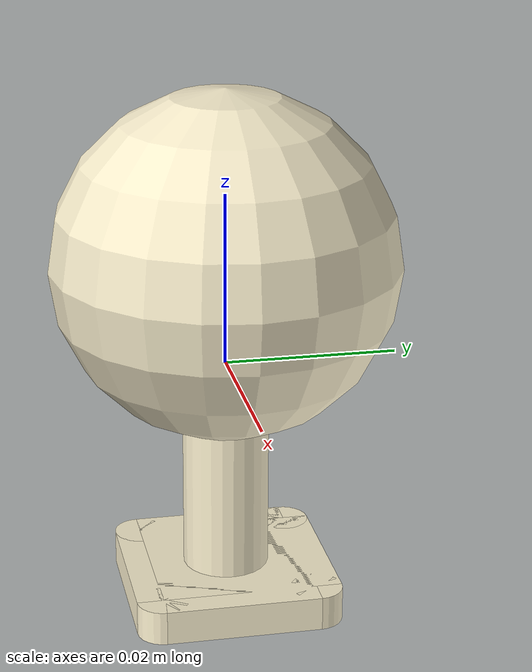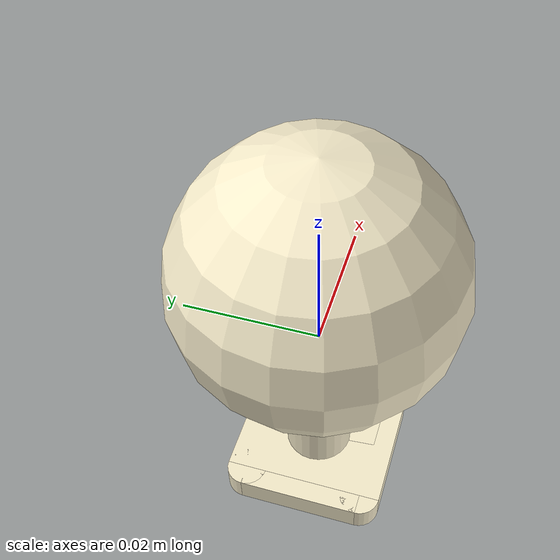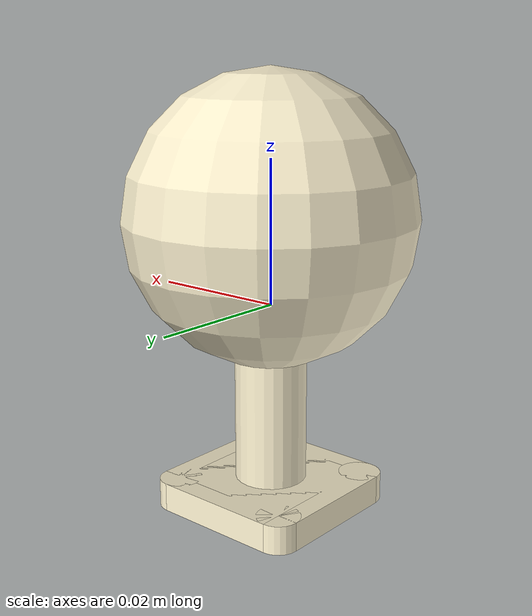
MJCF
<?xml version="1.0" encoding="utf-8"?>
<mujoco model="SpiRob_Egg">
  <compiler angle="radian" inertiafromgeom="true" autolimits="true" />
  <default>
    <geom density="300" friction="1.2 0.05 0.005" rgba="0.97 0.93 0.80 1.0"
          solref="0.01 1" solimp="0.9 0.95 0.05" contype="1" conaffinity="1" />
  </default>
  <worldbody>
    <body name="egg" pos="0 0 0">
      <joint name="egg_free" type="free" damping="0" stiffness="0" />
      <geom name="egg_body" type="cylinder" size="0.005 0.025" contype="1" conaffinity="1" />
      <geom name="egg_base_core_x" type="box" pos="0 0 -0.027" size="0.009 0.012 0.002" contype="1" conaffinity="1"/>
      <geom name="egg_base_core_y" type="box" pos="0 0 -0.027" size="0.012 0.009 0.002" contype="1" conaffinity="1"/>
      <geom name="egg_base_corner_mx_my" type="cylinder" pos="-0.009 -0.009 -0.027" size="0.003 0.002" contype="1" conaffinity="1" />
      <geom name="egg_base_corner_mx_py" type="cylinder" pos="-0.009 0.009 -0.027" size="0.003 0.002" contype="1" conaffinity="1" />
      <geom name="egg_base_corner_px_my" type="cylinder" pos="0.009 -0.009 -0.027" size="0.003 0.002" contype="1" conaffinity="1" />
      <geom name="egg_base_corner_px_py" type="cylinder" pos="0.009 0.009 -0.027" size="0.003 0.002" contype="1" conaffinity="1" />
      <geom name="egg_cap" type="sphere" pos="0 0 0.012" size="0.02" contype="1" conaffinity="1" />
    </body>
  </worldbody>
</mujoco>
